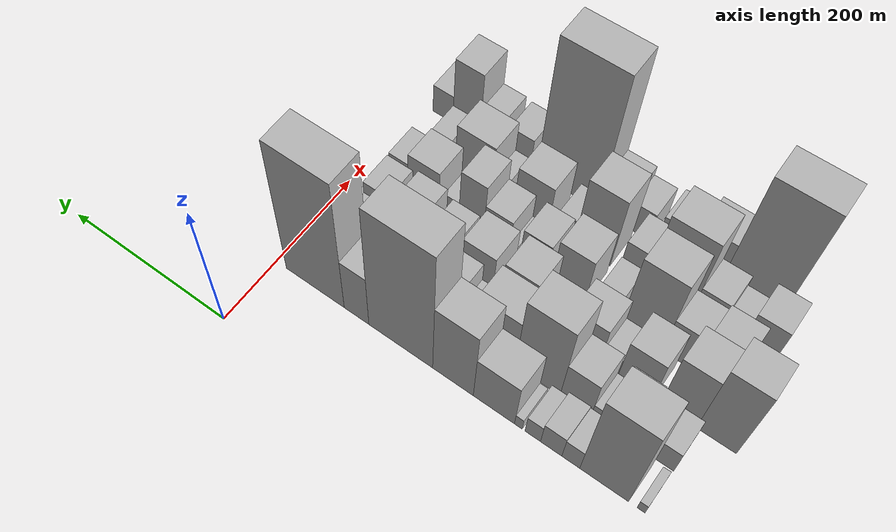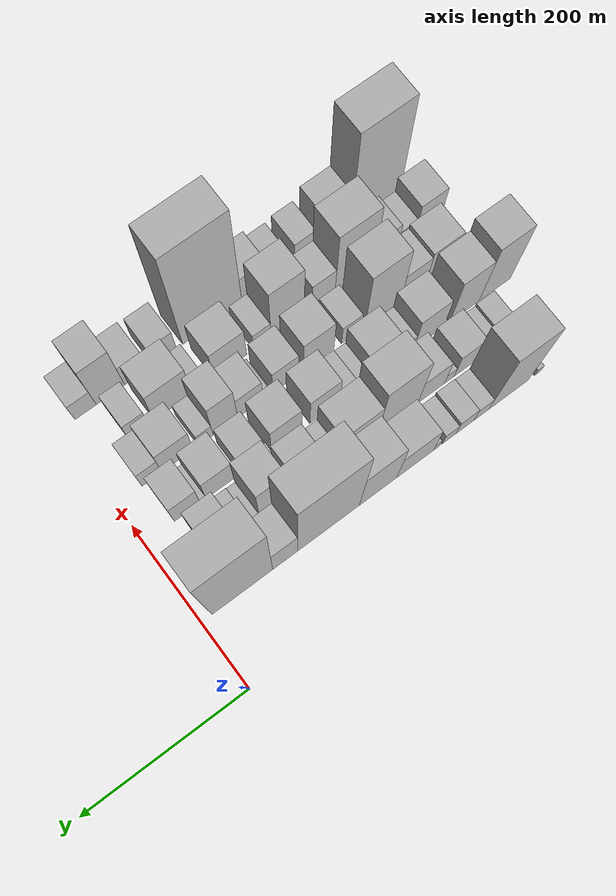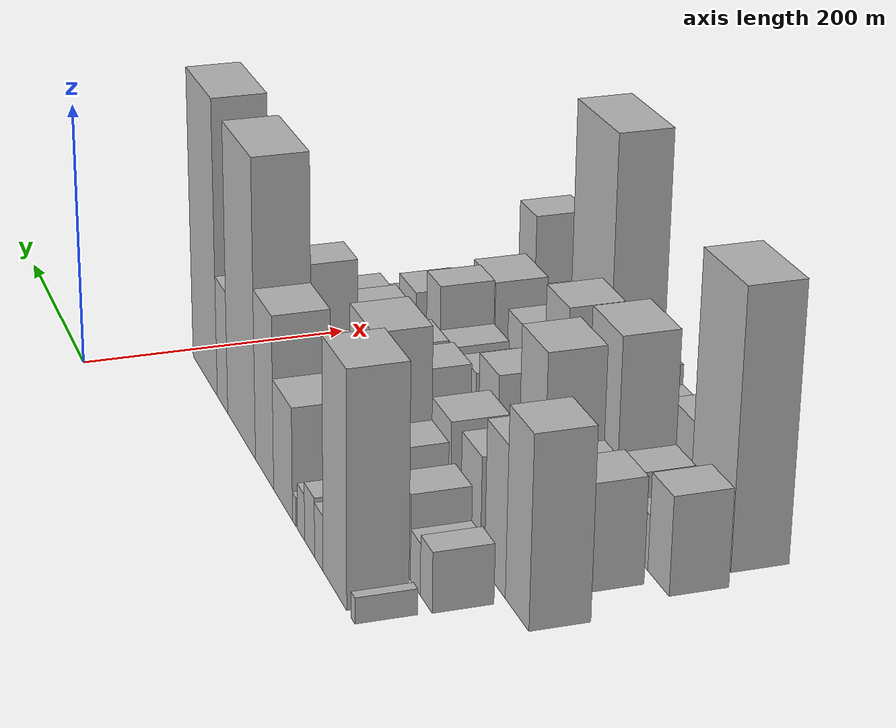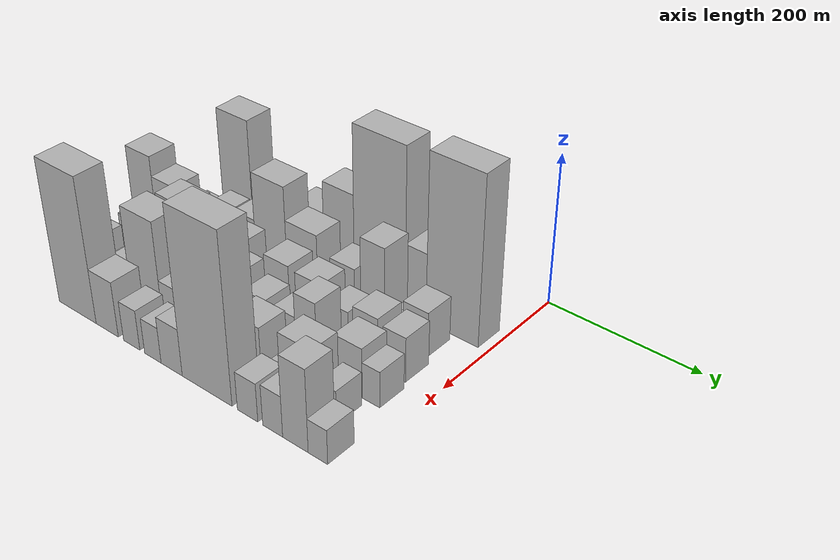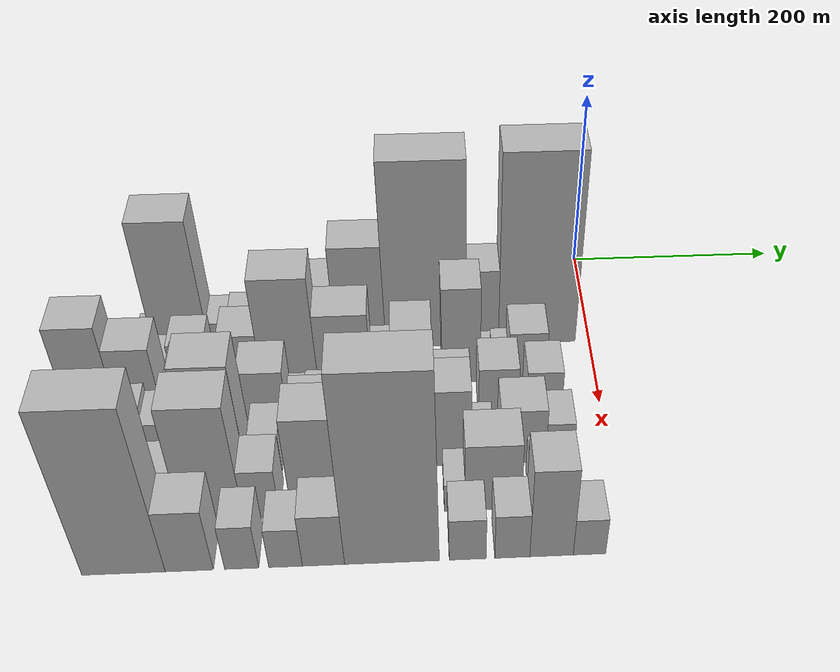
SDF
<sdf version="1.6">
 <world name="default">
  <model name="building_9">
   <static>1</static>
   <pose>100.0000 -427.7670 0 0.000000 0.000000 0.000000</pose>
   <link name="link">
    <pose>0 0 9.00 0 0 0</pose>
    <collision name="collision"><geometry><box><size>40.0000 8.4473 18.0000</size></box></geometry></collision>
    <visual name="visual">
     <cast_shadows>0</cast_shadows>
     <geometry><box><size>40.0000 8.4473 18.0000</size></box></geometry>
     <material>
      <script>
       <uri>model://HANNAS_wall/materials/scripts</uri>
       <uri>model://HANNAS_wall/materials/textures</uri>
       <name>vrc/HANNAS_wall</name>
      </script>
     </material>
    </visual>
   </link>
  </model>
  <model name="building_10">
   <static>1</static>
   <pose>100.0000 -388.4443 0 0.000000 0.000000 0.000000</pose>
   <link name="link">
    <pose>0 0 81.00 0 0 0</pose>
    <collision name="collision"><geometry><box><size>40.0000 52.1980 162.0000</size></box></geometry></collision>
    <visual name="visual">
     <cast_shadows>0</cast_shadows>
     <geometry><box><size>40.0000 52.1980 162.0000</size></box></geometry>
     <material>
      <script>
       <uri>model://HANNAS_wall/materials/scripts</uri>
       <uri>model://HANNAS_wall/materials/textures</uri>
       <name>vrc/HANNAS_wall</name>
      </script>
     </material>
    </visual>
   </link>
  </model>
  <model name="building_11">
   <static>1</static>
   <pose>100.0000 -352.5850 0 0.000000 0.000000 0.000000</pose>
   <link name="link">
    <pose>0 0 19.50 0 0 0</pose>
    <collision name="collision"><geometry><box><size>40.0000 19.5205 39.0000</size></box></geometry></collision>
    <visual name="visual">
     <cast_shadows>0</cast_shadows>
     <geometry><box><size>40.0000 19.5205 39.0000</size></box></geometry>
     <material>
      <script>
       <uri>model://HANNAS_wall/materials/scripts</uri>
       <uri>model://HANNAS_wall/materials/textures</uri>
       <name>vrc/HANNAS_wall</name>
      </script>
     </material>
    </visual>
   </link>
  </model>
  <model name="building_12">
   <static>1</static>
   <pose>100.0000 -331.0604 0 0.000000 0.000000 0.000000</pose>
   <link name="link">
    <pose>0 0 21.00 0 0 0</pose>
    <collision name="collision"><geometry><box><size>40.0000 23.5287 42.0000</size></box></geometry></collision>
    <visual name="visual">
     <cast_shadows>0</cast_shadows>
     <geometry><box><size>40.0000 23.5287 42.0000</size></box></geometry>
     <material>
      <script>
       <uri>model://HANNAS_wall/materials/scripts</uri>
       <uri>model://HANNAS_wall/materials/textures</uri>
       <name>vrc/HANNAS_wall</name>
      </script>
     </material>
    </visual>
   </link>
  </model>
  <model name="building_13">
   <static>1</static>
   <pose>100.0000 -310.6042 0 0.000000 0.000000 0.000000</pose>
   <link name="link">
    <pose>0 0 16.50 0 0 0</pose>
    <collision name="collision"><geometry><box><size>40.0000 17.3837 33.0000</size></box></geometry></collision>
    <visual name="visual">
     <cast_shadows>0</cast_shadows>
     <geometry><box><size>40.0000 17.3837 33.0000</size></box></geometry>
     <material>
      <script>
       <uri>model://HANNAS_wall/materials/scripts</uri>
       <uri>model://HANNAS_wall/materials/textures</uri>
       <name>vrc/HANNAS_wall</name>
      </script>
     </material>
    </visual>
   </link>
  </model>
  <model name="building_14">
   <static>1</static>
   <pose>100.0000 -294.4897 0 0.000000 0.000000 0.000000</pose>
   <link name="link">
    <pose>0 0 10.50 0 0 0</pose>
    <collision name="collision"><geometry><box><size>40.0000 8.8454 21.0000</size></box></geometry></collision>
    <visual name="visual">
     <cast_shadows>0</cast_shadows>
     <geometry><box><size>40.0000 8.8454 21.0000</size></box></geometry>
     <material>
      <script>
       <uri>model://HANNAS_wall/materials/scripts</uri>
       <uri>model://HANNAS_wall/materials/textures</uri>
       <name>vrc/HANNAS_wall</name>
      </script>
     </material>
    </visual>
   </link>
  </model>
  <model name="building_15">
   <static>1</static>
   <pose>100.0000 -266.5161 0 0.000000 0.000000 0.000000</pose>
   <link name="link">
    <pose>0 0 40.50 0 0 0</pose>
    <collision name="collision"><geometry><box><size>40.0000 47.1018 81.0000</size></box></geometry></collision>
    <visual name="visual">
     <cast_shadows>0</cast_shadows>
     <geometry><box><size>40.0000 47.1018 81.0000</size></box></geometry>
     <material>
      <script>
       <uri>model://HANNAS_wall/materials/scripts</uri>
       <uri>model://HANNAS_wall/materials/textures</uri>
       <name>vrc/HANNAS_wall</name>
      </script>
     </material>
    </visual>
   </link>
  </model>
  <model name="building_16">
   <static>1</static>
   <pose>100.0000 -219.1321 0 0.000000 0.000000 0.000000</pose>
   <link name="link">
    <pose>0 0 63.00 0 0 0</pose>
    <collision name="collision"><geometry><box><size>40.0000 47.6662 126.0000</size></box></geometry></collision>
    <visual name="visual">
     <cast_shadows>0</cast_shadows>
     <geometry><box><size>40.0000 47.6662 126.0000</size></box></geometry>
     <material>
      <script>
       <uri>model://HANNAS_wall/materials/scripts</uri>
       <uri>model://HANNAS_wall/materials/textures</uri>
       <name>vrc/HANNAS_wall</name>
      </script>
     </material>
    </visual>
   </link>
  </model>
  <model name="building_17">
   <static>1</static>
   <pose>100.0000 -156.6568 0 0.000000 0.000000 0.000000</pose>
   <link name="link">
    <pose>0 0 109.50 0 0 0</pose>
    <collision name="collision"><geometry><box><size>40.0000 77.2843 219.0000</size></box></geometry></collision>
    <visual name="visual">
     <cast_shadows>0</cast_shadows>
     <geometry><box><size>40.0000 77.2843 219.0000</size></box></geometry>
     <material>
      <script>
       <uri>model://HANNAS_wall/materials/scripts</uri>
       <uri>model://HANNAS_wall/materials/textures</uri>
       <name>vrc/HANNAS_wall</name>
      </script>
     </material>
    </visual>
   </link>
  </model>
  <model name="building_18">
   <static>1</static>
   <pose>100.0000 -102.6822 0 0.000000 0.000000 0.000000</pose>
   <link name="link">
    <pose>0 0 46.50 0 0 0</pose>
    <collision name="collision"><geometry><box><size>40.0000 30.6650 93.0000</size></box></geometry></collision>
    <visual name="visual">
     <cast_shadows>0</cast_shadows>
     <geometry><box><size>40.0000 30.6650 93.0000</size></box></geometry>
     <material>
      <script>
       <uri>model://HANNAS_wall/materials/scripts</uri>
       <uri>model://HANNAS_wall/materials/textures</uri>
       <name>vrc/HANNAS_wall</name>
      </script>
     </material>
    </visual>
   </link>
  </model>
  <model name="building_19">
   <static>1</static>
   <pose>100.0000 -50.2767 0 0.000000 0.000000 0.000000</pose>
   <link name="link">
    <pose>0 0 112.50 0 0 0</pose>
    <collision name="collision"><geometry><box><size>40.0000 74.1460 225.0000</size></box></geometry></collision>
    <visual name="visual">
     <cast_shadows>0</cast_shadows>
     <geometry><box><size>40.0000 74.1460 225.0000</size></box></geometry>
     <material>
      <script>
       <uri>model://HANNAS_wall/materials/scripts</uri>
       <uri>model://HANNAS_wall/materials/textures</uri>
       <name>vrc/HANNAS_wall</name>
      </script>
     </material>
    </visual>
   </link>
  </model>
  <model name="building_56">
   <static>1</static>
   <pose>149.0000 -421.1905 0 0.000000 0.000000 0.000000</pose>
   <link name="link">
    <pose>0 0 21.00 0 0 0</pose>
    <collision name="collision"><geometry><box><size>40.0000 23.5551 42.0000</size></box></geometry></collision>
    <visual name="visual">
     <cast_shadows>0</cast_shadows>
     <geometry><box><size>40.0000 23.5551 42.0000</size></box></geometry>
     <material>
      <script>
       <uri>model://HANNAS_wall/materials/scripts</uri>
       <uri>model://HANNAS_wall/materials/textures</uri>
       <name>vrc/HANNAS_wall</name>
      </script>
     </material>
    </visual>
   </link>
  </model>
  <model name="building_57">
   <static>1</static>
   <pose>149.0000 -399.3703 0 0.000000 0.000000 0.000000</pose>
   <link name="link">
    <pose>0 0 18.00 0 0 0</pose>
    <collision name="collision"><geometry><box><size>40.0000 20.0854 36.0000</size></box></geometry></collision>
    <visual name="visual">
     <cast_shadows>0</cast_shadows>
     <geometry><box><size>40.0000 20.0854 36.0000</size></box></geometry>
     <material>
      <script>
       <uri>model://HANNAS_wall/materials/scripts</uri>
       <uri>model://HANNAS_wall/materials/textures</uri>
       <name>vrc/HANNAS_wall</name>
      </script>
     </material>
    </visual>
   </link>
  </model>
  <model name="building_58">
   <static>1</static>
   <pose>149.0000 -372.7530 0 0.000000 0.000000 0.000000</pose>
   <link name="link">
    <pose>0 0 30.00 0 0 0</pose>
    <collision name="collision"><geometry><box><size>40.0000 33.1493 60.0000</size></box></geometry></collision>
    <visual name="visual">
     <cast_shadows>0</cast_shadows>
     <geometry><box><size>40.0000 33.1493 60.0000</size></box></geometry>
     <material>
      <script>
       <uri>model://HANNAS_wall/materials/scripts</uri>
       <uri>model://HANNAS_wall/materials/textures</uri>
       <name>vrc/HANNAS_wall</name>
      </script>
     </material>
    </visual>
   </link>
  </model>
  <model name="building_59">
   <static>1</static>
   <pose>149.0000 -349.8286 0 0.000000 0.000000 0.000000</pose>
   <link name="link">
    <pose>0 0 13.50 0 0 0</pose>
    <collision name="collision"><geometry><box><size>40.0000 12.6994 27.0000</size></box></geometry></collision>
    <visual name="visual">
     <cast_shadows>0</cast_shadows>
     <geometry><box><size>40.0000 12.6994 27.0000</size></box></geometry>
     <material>
      <script>
       <uri>model://HANNAS_wall/materials/scripts</uri>
       <uri>model://HANNAS_wall/materials/textures</uri>
       <name>vrc/HANNAS_wall</name>
      </script>
     </material>
    </visual>
   </link>
  </model>
  <model name="building_60">
   <static>1</static>
   <pose>149.0000 -326.1392 0 0.000000 0.000000 0.000000</pose>
   <link name="link">
    <pose>0 0 34.50 0 0 0</pose>
    <collision name="collision"><geometry><box><size>40.0000 34.6795 69.0000</size></box></geometry></collision>
    <visual name="visual">
     <cast_shadows>0</cast_shadows>
     <geometry><box><size>40.0000 34.6795 69.0000</size></box></geometry>
     <material>
      <script>
       <uri>model://HANNAS_wall/materials/scripts</uri>
       <uri>model://HANNAS_wall/materials/textures</uri>
       <name>vrc/HANNAS_wall</name>
      </script>
     </material>
    </visual>
   </link>
  </model>
  <model name="building_61">
   <static>1</static>
   <pose>149.0000 -283.1372 0 0.000000 0.000000 0.000000</pose>
   <link name="link">
    <pose>0 0 67.50 0 0 0</pose>
    <collision name="collision"><geometry><box><size>40.0000 51.3245 135.0000</size></box></geometry></collision>
    <visual name="visual">
     <cast_shadows>0</cast_shadows>
     <geometry><box><size>40.0000 51.3245 135.0000</size></box></geometry>
     <material>
      <script>
       <uri>model://HANNAS_wall/materials/scripts</uri>
       <uri>model://HANNAS_wall/materials/textures</uri>
       <name>vrc/HANNAS_wall</name>
      </script>
     </material>
    </visual>
   </link>
  </model>
  <model name="building_62">
   <static>1</static>
   <pose>149.0000 -232.9985 0 0.000000 0.000000 0.000000</pose>
   <link name="link">
    <pose>0 0 45.00 0 0 0</pose>
    <collision name="collision"><geometry><box><size>40.0000 48.9528 90.0000</size></box></geometry></collision>
    <visual name="visual">
     <cast_shadows>0</cast_shadows>
     <geometry><box><size>40.0000 48.9528 90.0000</size></box></geometry>
     <material>
      <script>
       <uri>model://HANNAS_wall/materials/scripts</uri>
       <uri>model://HANNAS_wall/materials/textures</uri>
       <name>vrc/HANNAS_wall</name>
      </script>
     </material>
    </visual>
   </link>
  </model>
  <model name="building_63">
   <static>1</static>
   <pose>149.0000 -198.7136 0 0.000000 0.000000 0.000000</pose>
   <link name="link">
    <pose>0 0 19.50 0 0 0</pose>
    <collision name="collision"><geometry><box><size>40.0000 19.6170 39.0000</size></box></geometry></collision>
    <visual name="visual">
     <cast_shadows>0</cast_shadows>
     <geometry><box><size>40.0000 19.6170 39.0000</size></box></geometry>
     <material>
      <script>
       <uri>model://HANNAS_wall/materials/scripts</uri>
       <uri>model://HANNAS_wall/materials/textures</uri>
       <name>vrc/HANNAS_wall</name>
      </script>
     </material>
    </visual>
   </link>
  </model>
  <model name="building_64">
   <static>1</static>
   <pose>149.0000 -170.3806 0 0.000000 0.000000 0.000000</pose>
   <link name="link">
    <pose>0 0 34.50 0 0 0</pose>
    <collision name="collision"><geometry><box><size>40.0000 37.0490 69.0000</size></box></geometry></collision>
    <visual name="visual">
     <cast_shadows>0</cast_shadows>
     <geometry><box><size>40.0000 37.0490 69.0000</size></box></geometry>
     <material>
      <script>
       <uri>model://HANNAS_wall/materials/scripts</uri>
       <uri>model://HANNAS_wall/materials/textures</uri>
       <name>vrc/HANNAS_wall</name>
      </script>
     </material>
    </visual>
   </link>
  </model>
  <model name="building_65">
   <static>1</static>
   <pose>149.0000 -125.1274 0 0.000000 0.000000 0.000000</pose>
   <link name="link">
    <pose>0 0 58.50 0 0 0</pose>
    <collision name="collision"><geometry><box><size>40.0000 35.4574 117.0000</size></box></geometry></collision>
    <visual name="visual">
     <cast_shadows>0</cast_shadows>
     <geometry><box><size>40.0000 35.4574 117.0000</size></box></geometry>
     <material>
      <script>
       <uri>model://HANNAS_wall/materials/scripts</uri>
       <uri>model://HANNAS_wall/materials/textures</uri>
       <name>vrc/HANNAS_wall</name>
      </script>
     </material>
    </visual>
   </link>
  </model>
  <model name="building_66">
   <static>1</static>
   <pose>149.0000 -101.9078 0 0.000000 0.000000 0.000000</pose>
   <link name="link">
    <pose>0 0 13.50 0 0 0</pose>
    <collision name="collision"><geometry><box><size>40.0000 10.9818 27.0000</size></box></geometry></collision>
    <visual name="visual">
     <cast_shadows>0</cast_shadows>
     <geometry><box><size>40.0000 10.9818 27.0000</size></box></geometry>
     <material>
      <script>
       <uri>model://HANNAS_wall/materials/scripts</uri>
       <uri>model://HANNAS_wall/materials/textures</uri>
       <name>vrc/HANNAS_wall</name>
      </script>
     </material>
    </visual>
   </link>
  </model>
  <model name="building_67">
   <static>1</static>
   <pose>149.0000 -88.7672 0 0.000000 0.000000 0.000000</pose>
   <link name="link">
    <pose>0 0 15.00 0 0 0</pose>
    <collision name="collision"><geometry><box><size>40.0000 15.2995 30.0000</size></box></geometry></collision>
    <visual name="visual">
     <cast_shadows>0</cast_shadows>
     <geometry><box><size>40.0000 15.2995 30.0000</size></box></geometry>
     <material>
      <script>
       <uri>model://HANNAS_wall/materials/scripts</uri>
       <uri>model://HANNAS_wall/materials/textures</uri>
       <name>vrc/HANNAS_wall</name>
      </script>
     </material>
    </visual>
   </link>
  </model>
  <model name="building_68">
   <static>1</static>
   <pose>149.0000 -63.5517 0 0.000000 0.000000 0.000000</pose>
   <link name="link">
    <pose>0 0 30.00 0 0 0</pose>
    <collision name="collision"><geometry><box><size>40.0000 35.1316 60.0000</size></box></geometry></collision>
    <visual name="visual">
     <cast_shadows>0</cast_shadows>
     <geometry><box><size>40.0000 35.1316 60.0000</size></box></geometry>
     <material>
      <script>
       <uri>model://HANNAS_wall/materials/scripts</uri>
       <uri>model://HANNAS_wall/materials/textures</uri>
       <name>vrc/HANNAS_wall</name>
      </script>
     </material>
    </visual>
   </link>
  </model>
  <model name="building_108">
   <static>1</static>
   <pose>198.0000 -449.6464 0 0.000000 0.000000 0.000000</pose>
   <link name="link">
    <pose>0 0 66.00 0 0 0</pose>
    <collision name="collision"><geometry><box><size>40.0000 42.3879 132.0000</size></box></geometry></collision>
    <visual name="visual">
     <cast_shadows>0</cast_shadows>
     <geometry><box><size>40.0000 42.3879 132.0000</size></box></geometry>
     <material>
      <script>
       <uri>model://HANNAS_wall/materials/scripts</uri>
       <uri>model://HANNAS_wall/materials/textures</uri>
       <name>vrc/HANNAS_wall</name>
      </script>
     </material>
    </visual>
   </link>
  </model>
  <model name="building_109">
   <static>1</static>
   <pose>198.0000 -408.9174 0 0.000000 0.000000 0.000000</pose>
   <link name="link">
    <pose>0 0 52.50 0 0 0</pose>
    <collision name="collision"><geometry><box><size>40.0000 39.0702 105.0000</size></box></geometry></collision>
    <visual name="visual">
     <cast_shadows>0</cast_shadows>
     <geometry><box><size>40.0000 39.0702 105.0000</size></box></geometry>
     <material>
      <script>
       <uri>model://HANNAS_wall/materials/scripts</uri>
       <uri>model://HANNAS_wall/materials/textures</uri>
       <name>vrc/HANNAS_wall</name>
      </script>
     </material>
    </visual>
   </link>
  </model>
  <model name="building_110">
   <static>1</static>
   <pose>198.0000 -361.9362 0 0.000000 0.000000 0.000000</pose>
   <link name="link">
    <pose>0 0 37.50 0 0 0</pose>
    <collision name="collision"><geometry><box><size>40.0000 38.8923 75.0000</size></box></geometry></collision>
    <visual name="visual">
     <cast_shadows>0</cast_shadows>
     <geometry><box><size>40.0000 38.8923 75.0000</size></box></geometry>
     <material>
      <script>
       <uri>model://HANNAS_wall/materials/scripts</uri>
       <uri>model://HANNAS_wall/materials/textures</uri>
       <name>vrc/HANNAS_wall</name>
      </script>
     </material>
    </visual>
   </link>
  </model>
  <model name="building_111">
   <static>1</static>
   <pose>198.0000 -332.0083 0 0.000000 0.000000 0.000000</pose>
   <link name="link">
    <pose>0 0 18.00 0 0 0</pose>
    <collision name="collision"><geometry><box><size>40.0000 20.9636 36.0000</size></box></geometry></collision>
    <visual name="visual">
     <cast_shadows>0</cast_shadows>
     <geometry><box><size>40.0000 20.9636 36.0000</size></box></geometry>
     <material>
      <script>
       <uri>model://HANNAS_wall/materials/scripts</uri>
       <uri>model://HANNAS_wall/materials/textures</uri>
       <name>vrc/HANNAS_wall</name>
      </script>
     </material>
    </visual>
   </link>
  </model>
  <model name="building_112">
   <static>1</static>
   <pose>198.0000 -301.5677 0 0.000000 0.000000 0.000000</pose>
   <link name="link">
    <pose>0 0 36.00 0 0 0</pose>
    <collision name="collision"><geometry><box><size>40.0000 39.9176 72.0000</size></box></geometry></collision>
    <visual name="visual">
     <cast_shadows>0</cast_shadows>
     <geometry><box><size>40.0000 39.9176 72.0000</size></box></geometry>
     <material>
      <script>
       <uri>model://HANNAS_wall/materials/scripts</uri>
       <uri>model://HANNAS_wall/materials/textures</uri>
       <name>vrc/HANNAS_wall</name>
      </script>
     </material>
    </visual>
   </link>
  </model>
  <model name="building_113">
   <static>1</static>
   <pose>198.0000 -274.0998 0 0.000000 0.000000 0.000000</pose>
   <link name="link">
    <pose>0 0 15.00 0 0 0</pose>
    <collision name="collision"><geometry><box><size>40.0000 15.0181 30.0000</size></box></geometry></collision>
    <visual name="visual">
     <cast_shadows>0</cast_shadows>
     <geometry><box><size>40.0000 15.0181 30.0000</size></box></geometry>
     <material>
      <script>
       <uri>model://HANNAS_wall/materials/scripts</uri>
       <uri>model://HANNAS_wall/materials/textures</uri>
       <name>vrc/HANNAS_wall</name>
      </script>
     </material>
    </visual>
   </link>
  </model>
  <model name="building_114">
   <static>1</static>
   <pose>198.0000 -257.3623 0 0.000000 0.000000 0.000000</pose>
   <link name="link">
    <pose>0 0 16.50 0 0 0</pose>
    <collision name="collision"><geometry><box><size>40.0000 18.4568 33.0000</size></box></geometry></collision>
    <visual name="visual">
     <cast_shadows>0</cast_shadows>
     <geometry><box><size>40.0000 18.4568 33.0000</size></box></geometry>
     <material>
      <script>
       <uri>model://HANNAS_wall/materials/scripts</uri>
       <uri>model://HANNAS_wall/materials/textures</uri>
       <name>vrc/HANNAS_wall</name>
      </script>
     </material>
    </visual>
   </link>
  </model>
  <model name="building_115">
   <static>1</static>
   <pose>198.0000 -225.9661 0 0.000000 0.000000 0.000000</pose>
   <link name="link">
    <pose>0 0 37.50 0 0 0</pose>
    <collision name="collision"><geometry><box><size>40.0000 38.3356 75.0000</size></box></geometry></collision>
    <visual name="visual">
     <cast_shadows>0</cast_shadows>
     <geometry><box><size>40.0000 38.3356 75.0000</size></box></geometry>
     <material>
      <script>
       <uri>model://HANNAS_wall/materials/scripts</uri>
       <uri>model://HANNAS_wall/materials/textures</uri>
       <name>vrc/HANNAS_wall</name>
      </script>
     </material>
    </visual>
   </link>
  </model>
  <model name="building_116">
   <static>1</static>
   <pose>198.0000 -177.3734 0 0.000000 0.000000 0.000000</pose>
   <link name="link">
    <pose>0 0 36.00 0 0 0</pose>
    <collision name="collision"><geometry><box><size>40.0000 38.8499 72.0000</size></box></geometry></collision>
    <visual name="visual">
     <cast_shadows>0</cast_shadows>
     <geometry><box><size>40.0000 38.8499 72.0000</size></box></geometry>
     <material>
      <script>
       <uri>model://HANNAS_wall/materials/scripts</uri>
       <uri>model://HANNAS_wall/materials/textures</uri>
       <name>vrc/HANNAS_wall</name>
      </script>
     </material>
    </visual>
   </link>
  </model>
  <model name="building_117">
   <static>1</static>
   <pose>198.0000 -134.8131 0 0.000000 0.000000 0.000000</pose>
   <link name="link">
    <pose>0 0 27.00 0 0 0</pose>
    <collision name="collision"><geometry><box><size>40.0000 32.2707 54.0000</size></box></geometry></collision>
    <visual name="visual">
     <cast_shadows>0</cast_shadows>
     <geometry><box><size>40.0000 32.2707 54.0000</size></box></geometry>
     <material>
      <script>
       <uri>model://HANNAS_wall/materials/scripts</uri>
       <uri>model://HANNAS_wall/materials/textures</uri>
       <name>vrc/HANNAS_wall</name>
      </script>
     </material>
    </visual>
   </link>
  </model>
  <model name="building_118">
   <static>1</static>
   <pose>198.0000 -93.8465 0 0.000000 0.000000 0.000000</pose>
   <link name="link">
    <pose>0 0 33.00 0 0 0</pose>
    <collision name="collision"><geometry><box><size>40.0000 35.6626 66.0000</size></box></geometry></collision>
    <visual name="visual">
     <cast_shadows>0</cast_shadows>
     <geometry><box><size>40.0000 35.6626 66.0000</size></box></geometry>
     <material>
      <script>
       <uri>model://HANNAS_wall/materials/scripts</uri>
       <uri>model://HANNAS_wall/materials/textures</uri>
       <name>vrc/HANNAS_wall</name>
      </script>
     </material>
    </visual>
   </link>
  </model>
  <model name="building_119">
   <static>1</static>
   <pose>198.0000 -72.4937 0 0.000000 0.000000 0.000000</pose>
   <link name="link">
    <pose>0 0 7.50 0 0 0</pose>
    <collision name="collision"><geometry><box><size>40.0000 7.0430 15.0000</size></box></geometry></collision>
    <visual name="visual">
     <cast_shadows>0</cast_shadows>
     <geometry><box><size>40.0000 7.0430 15.0000</size></box></geometry>
     <material>
      <script>
       <uri>model://HANNAS_wall/materials/scripts</uri>
       <uri>model://HANNAS_wall/materials/textures</uri>
       <name>vrc/HANNAS_wall</name>
      </script>
     </material>
    </visual>
   </link>
  </model>
  <model name="building_120">
   <static>1</static>
   <pose>198.0000 -53.0668 0 0.000000 0.000000 0.000000</pose>
   <link name="link">
    <pose>0 0 30.00 0 0 0</pose>
    <collision name="collision"><geometry><box><size>40.0000 31.8107 60.0000</size></box></geometry></collision>
    <visual name="visual">
     <cast_shadows>0</cast_shadows>
     <geometry><box><size>40.0000 31.8107 60.0000</size></box></geometry>
     <material>
      <script>
       <uri>model://HANNAS_wall/materials/scripts</uri>
       <uri>model://HANNAS_wall/materials/textures</uri>
       <name>vrc/HANNAS_wall</name>
      </script>
     </material>
    </visual>
   </link>
  </model>
  <model name="building_153">
   <static>1</static>
   <pose>247.0000 -416.2827 0 0.000000 0.000000 0.000000</pose>
   <link name="link">
    <pose>0 0 37.50 0 0 0</pose>
    <collision name="collision"><geometry><box><size>40.0000 39.3987 75.0000</size></box></geometry></collision>
    <visual name="visual">
     <cast_shadows>0</cast_shadows>
     <geometry><box><size>40.0000 39.3987 75.0000</size></box></geometry>
     <material>
      <script>
       <uri>model://HANNAS_wall/materials/scripts</uri>
       <uri>model://HANNAS_wall/materials/textures</uri>
       <name>vrc/HANNAS_wall</name>
      </script>
     </material>
    </visual>
   </link>
  </model>
  <model name="building_154">
   <static>1</static>
   <pose>247.0000 -379.7802 0 0.000000 0.000000 0.000000</pose>
   <link name="link">
    <pose>0 0 33.00 0 0 0</pose>
    <collision name="collision"><geometry><box><size>40.0000 33.6064 66.0000</size></box></geometry></collision>
    <visual name="visual">
     <cast_shadows>0</cast_shadows>
     <geometry><box><size>40.0000 33.6064 66.0000</size></box></geometry>
     <material>
      <script>
       <uri>model://HANNAS_wall/materials/scripts</uri>
       <uri>model://HANNAS_wall/materials/textures</uri>
       <name>vrc/HANNAS_wall</name>
      </script>
     </material>
    </visual>
   </link>
  </model>
  <model name="building_155">
   <static>1</static>
   <pose>247.0000 -339.1544 0 0.000000 0.000000 0.000000</pose>
   <link name="link">
    <pose>0 0 66.00 0 0 0</pose>
    <collision name="collision"><geometry><box><size>40.0000 47.6451 132.0000</size></box></geometry></collision>
    <visual name="visual">
     <cast_shadows>0</cast_shadows>
     <geometry><box><size>40.0000 47.6451 132.0000</size></box></geometry>
     <material>
      <script>
       <uri>model://HANNAS_wall/materials/scripts</uri>
       <uri>model://HANNAS_wall/materials/textures</uri>
       <name>vrc/HANNAS_wall</name>
      </script>
     </material>
    </visual>
   </link>
  </model>
  <model name="building_156">
   <static>1</static>
   <pose>247.0000 -297.4742 0 0.000000 0.000000 0.000000</pose>
   <link name="link">
    <pose>0 0 22.50 0 0 0</pose>
    <collision name="collision"><geometry><box><size>40.0000 25.7153 45.0000</size></box></geometry></collision>
    <visual name="visual">
     <cast_shadows>0</cast_shadows>
     <geometry><box><size>40.0000 25.7153 45.0000</size></box></geometry>
     <material>
      <script>
       <uri>model://HANNAS_wall/materials/scripts</uri>
       <uri>model://HANNAS_wall/materials/textures</uri>
       <name>vrc/HANNAS_wall</name>
      </script>
     </material>
    </visual>
   </link>
  </model>
  <model name="building_157">
   <static>1</static>
   <pose>247.0000 -255.0066 0 0.000000 0.000000 0.000000</pose>
   <link name="link">
    <pose>0 0 39.00 0 0 0</pose>
    <collision name="collision"><geometry><box><size>40.0000 39.2197 78.0000</size></box></geometry></collision>
    <visual name="visual">
     <cast_shadows>0</cast_shadows>
     <geometry><box><size>40.0000 39.2197 78.0000</size></box></geometry>
     <material>
      <script>
       <uri>model://HANNAS_wall/materials/scripts</uri>
       <uri>model://HANNAS_wall/materials/textures</uri>
       <name>vrc/HANNAS_wall</name>
      </script>
     </material>
    </visual>
   </link>
  </model>
  <model name="building_158">
   <static>1</static>
   <pose>247.0000 -212.8145 0 0.000000 0.000000 0.000000</pose>
   <link name="link">
    <pose>0 0 30.00 0 0 0</pose>
    <collision name="collision"><geometry><box><size>40.0000 33.1645 60.0000</size></box></geometry></collision>
    <visual name="visual">
     <cast_shadows>0</cast_shadows>
     <geometry><box><size>40.0000 33.1645 60.0000</size></box></geometry>
     <material>
      <script>
       <uri>model://HANNAS_wall/materials/scripts</uri>
       <uri>model://HANNAS_wall/materials/textures</uri>
       <name>vrc/HANNAS_wall</name>
      </script>
     </material>
    </visual>
   </link>
  </model>
  <model name="building_159">
   <static>1</static>
   <pose>247.0000 -187.9735 0 0.000000 0.000000 0.000000</pose>
   <link name="link">
    <pose>0 0 10.50 0 0 0</pose>
    <collision name="collision"><geometry><box><size>40.0000 8.5174 21.0000</size></box></geometry></collision>
    <visual name="visual">
     <cast_shadows>0</cast_shadows>
     <geometry><box><size>40.0000 8.5174 21.0000</size></box></geometry>
     <material>
      <script>
       <uri>model://HANNAS_wall/materials/scripts</uri>
       <uri>model://HANNAS_wall/materials/textures</uri>
       <name>vrc/HANNAS_wall</name>
      </script>
     </material>
    </visual>
   </link>
  </model>
  <model name="building_160">
   <static>1</static>
   <pose>247.0000 -167.5328 0 0.000000 0.000000 0.000000</pose>
   <link name="link">
    <pose>0 0 30.00 0 0 0</pose>
    <collision name="collision"><geometry><box><size>40.0000 32.3640 60.0000</size></box></geometry></collision>
    <visual name="visual">
     <cast_shadows>0</cast_shadows>
     <geometry><box><size>40.0000 32.3640 60.0000</size></box></geometry>
     <material>
      <script>
       <uri>model://HANNAS_wall/materials/scripts</uri>
       <uri>model://HANNAS_wall/materials/textures</uri>
       <name>vrc/HANNAS_wall</name>
      </script>
     </material>
    </visual>
   </link>
  </model>
  <model name="building_161">
   <static>1</static>
   <pose>247.0000 -135.9213 0 0.000000 0.000000 0.000000</pose>
   <link name="link">
    <pose>0 0 46.50 0 0 0</pose>
    <collision name="collision"><geometry><box><size>40.0000 30.8590 93.0000</size></box></geometry></collision>
    <visual name="visual">
     <cast_shadows>0</cast_shadows>
     <geometry><box><size>40.0000 30.8590 93.0000</size></box></geometry>
     <material>
      <script>
       <uri>model://HANNAS_wall/materials/scripts</uri>
       <uri>model://HANNAS_wall/materials/textures</uri>
       <name>vrc/HANNAS_wall</name>
      </script>
     </material>
    </visual>
   </link>
  </model>
  <model name="building_162">
   <static>1</static>
   <pose>247.0000 -111.0636 0 0.000000 0.000000 0.000000</pose>
   <link name="link">
    <pose>0 0 18.00 0 0 0</pose>
    <collision name="collision"><geometry><box><size>40.0000 18.8565 36.0000</size></box></geometry></collision>
    <visual name="visual">
     <cast_shadows>0</cast_shadows>
     <geometry><box><size>40.0000 18.8565 36.0000</size></box></geometry>
     <material>
      <script>
       <uri>model://HANNAS_wall/materials/scripts</uri>
       <uri>model://HANNAS_wall/materials/textures</uri>
       <name>vrc/HANNAS_wall</name>
      </script>
     </material>
    </visual>
   </link>
  </model>
  <model name="building_163">
   <static>1</static>
   <pose>247.0000 -75.8378 0 0.000000 0.000000 0.000000</pose>
   <link name="link">
    <pose>0 0 33.00 0 0 0</pose>
    <collision name="collision"><geometry><box><size>40.0000 39.5952 66.0000</size></box></geometry></collision>
    <visual name="visual">
     <cast_shadows>0</cast_shadows>
     <geometry><box><size>40.0000 39.5952 66.0000</size></box></geometry>
     <material>
      <script>
       <uri>model://HANNAS_wall/materials/scripts</uri>
       <uri>model://HANNAS_wall/materials/textures</uri>
       <name>vrc/HANNAS_wall</name>
      </script>
     </material>
    </visual>
   </link>
  </model>
  <model name="building_164">
   <static>1</static>
   <pose>247.0000 -43.8444 0 0.000000 0.000000 0.000000</pose>
   <link name="link">
    <pose>0 0 24.00 0 0 0</pose>
    <collision name="collision"><geometry><box><size>40.0000 24.3916 48.0000</size></box></geometry></collision>
    <visual name="visual">
     <cast_shadows>0</cast_shadows>
     <geometry><box><size>40.0000 24.3916 48.0000</size></box></geometry>
     <material>
      <script>
       <uri>model://HANNAS_wall/materials/scripts</uri>
       <uri>model://HANNAS_wall/materials/textures</uri>
       <name>vrc/HANNAS_wall</name>
      </script>
     </material>
    </visual>
   </link>
  </model>
  <model name="building_202">
   <static>1</static>
   <pose>296.0000 -437.6895 0 0.000000 0.000000 0.000000</pose>
   <link name="link">
    <pose>0 0 34.50 0 0 0</pose>
    <collision name="collision"><geometry><box><size>40.0000 34.5657 69.0000</size></box></geometry></collision>
    <visual name="visual">
     <cast_shadows>0</cast_shadows>
     <geometry><box><size>40.0000 34.5657 69.0000</size></box></geometry>
     <material>
      <script>
       <uri>model://HANNAS_wall/materials/scripts</uri>
       <uri>model://HANNAS_wall/materials/textures</uri>
       <name>vrc/HANNAS_wall</name>
      </script>
     </material>
    </visual>
   </link>
  </model>
  <model name="building_203">
   <static>1</static>
   <pose>296.0000 -408.7557 0 0.000000 0.000000 0.000000</pose>
   <link name="link">
    <pose>0 0 19.50 0 0 0</pose>
    <collision name="collision"><geometry><box><size>40.0000 23.3019 39.0000</size></box></geometry></collision>
    <visual name="visual">
     <cast_shadows>0</cast_shadows>
     <geometry><box><size>40.0000 23.3019 39.0000</size></box></geometry>
     <material>
      <script>
       <uri>model://HANNAS_wall/materials/scripts</uri>
       <uri>model://HANNAS_wall/materials/textures</uri>
       <name>vrc/HANNAS_wall</name>
      </script>
     </material>
    </visual>
   </link>
  </model>
  <model name="building_204">
   <static>1</static>
   <pose>296.0000 -381.1499 0 0.000000 0.000000 0.000000</pose>
   <link name="link">
    <pose>0 0 28.50 0 0 0</pose>
    <collision name="collision"><geometry><box><size>40.0000 31.9096 57.0000</size></box></geometry></collision>
    <visual name="visual">
     <cast_shadows>0</cast_shadows>
     <geometry><box><size>40.0000 31.9096 57.0000</size></box></geometry>
     <material>
      <script>
       <uri>model://HANNAS_wall/materials/scripts</uri>
       <uri>model://HANNAS_wall/materials/textures</uri>
       <name>vrc/HANNAS_wall</name>
      </script>
     </material>
    </visual>
   </link>
  </model>
  <model name="building_205">
   <static>1</static>
   <pose>296.0000 -339.2434 0 0.000000 0.000000 0.000000</pose>
   <link name="link">
    <pose>0 0 69.00 0 0 0</pose>
    <collision name="collision"><geometry><box><size>40.0000 51.9035 138.0000</size></box></geometry></collision>
    <visual name="visual">
     <cast_shadows>0</cast_shadows>
     <geometry><box><size>40.0000 51.9035 138.0000</size></box></geometry>
     <material>
      <script>
       <uri>model://HANNAS_wall/materials/scripts</uri>
       <uri>model://HANNAS_wall/materials/textures</uri>
       <name>vrc/HANNAS_wall</name>
      </script>
     </material>
    </visual>
   </link>
  </model>
  <model name="building_206">
   <static>1</static>
   <pose>296.0000 -298.1695 0 0.000000 0.000000 0.000000</pose>
   <link name="link">
    <pose>0 0 30.00 0 0 0</pose>
    <collision name="collision"><geometry><box><size>40.0000 30.2442 60.0000</size></box></geometry></collision>
    <visual name="visual">
     <cast_shadows>0</cast_shadows>
     <geometry><box><size>40.0000 30.2442 60.0000</size></box></geometry>
     <material>
      <script>
       <uri>model://HANNAS_wall/materials/scripts</uri>
       <uri>model://HANNAS_wall/materials/textures</uri>
       <name>vrc/HANNAS_wall</name>
      </script>
     </material>
    </visual>
   </link>
  </model>
  <model name="building_207">
   <static>1</static>
   <pose>296.0000 -251.5535 0 0.000000 0.000000 0.000000</pose>
   <link name="link">
    <pose>0 0 60.00 0 0 0</pose>
    <collision name="collision"><geometry><box><size>40.0000 42.9878 120.0000</size></box></geometry></collision>
    <visual name="visual">
     <cast_shadows>0</cast_shadows>
     <geometry><box><size>40.0000 42.9878 120.0000</size></box></geometry>
     <material>
      <script>
       <uri>model://HANNAS_wall/materials/scripts</uri>
       <uri>model://HANNAS_wall/materials/textures</uri>
       <name>vrc/HANNAS_wall</name>
      </script>
     </material>
    </visual>
   </link>
  </model>
  <model name="building_208">
   <static>1</static>
   <pose>296.0000 -218.7961 0 0.000000 0.000000 0.000000</pose>
   <link name="link">
    <pose>0 0 21.00 0 0 0</pose>
    <collision name="collision"><geometry><box><size>40.0000 22.5271 42.0000</size></box></geometry></collision>
    <visual name="visual">
     <cast_shadows>0</cast_shadows>
     <geometry><box><size>40.0000 22.5271 42.0000</size></box></geometry>
     <material>
      <script>
       <uri>model://HANNAS_wall/materials/scripts</uri>
       <uri>model://HANNAS_wall/materials/textures</uri>
       <name>vrc/HANNAS_wall</name>
      </script>
     </material>
    </visual>
   </link>
  </model>
  <model name="building_209">
   <static>1</static>
   <pose>296.0000 -177.3024 0 0.000000 0.000000 0.000000</pose>
   <link name="link">
    <pose>0 0 36.00 0 0 0</pose>
    <collision name="collision"><geometry><box><size>40.0000 42.4602 72.0000</size></box></geometry></collision>
    <visual name="visual">
     <cast_shadows>0</cast_shadows>
     <geometry><box><size>40.0000 42.4602 72.0000</size></box></geometry>
     <material>
      <script>
       <uri>model://HANNAS_wall/materials/scripts</uri>
       <uri>model://HANNAS_wall/materials/textures</uri>
       <name>vrc/HANNAS_wall</name>
      </script>
     </material>
    </visual>
   </link>
  </model>
  <model name="building_210">
   <static>1</static>
   <pose>296.0000 -137.2329 0 0.000000 0.000000 0.000000</pose>
   <link name="link">
    <pose>0 0 16.50 0 0 0</pose>
    <collision name="collision"><geometry><box><size>40.0000 17.6788 33.0000</size></box></geometry></collision>
    <visual name="visual">
     <cast_shadows>0</cast_shadows>
     <geometry><box><size>40.0000 17.6788 33.0000</size></box></geometry>
     <material>
      <script>
       <uri>model://HANNAS_wall/materials/scripts</uri>
       <uri>model://HANNAS_wall/materials/textures</uri>
       <name>vrc/HANNAS_wall</name>
      </script>
     </material>
    </visual>
   </link>
  </model>
  <model name="building_211">
   <static>1</static>
   <pose>296.0000 -104.7589 0 0.000000 0.000000 0.000000</pose>
   <link name="link">
    <pose>0 0 40.50 0 0 0</pose>
    <collision name="collision"><geometry><box><size>40.0000 47.2693 81.0000</size></box></geometry></collision>
    <visual name="visual">
     <cast_shadows>0</cast_shadows>
     <geometry><box><size>40.0000 47.2693 81.0000</size></box></geometry>
     <material>
      <script>
       <uri>model://HANNAS_wall/materials/scripts</uri>
       <uri>model://HANNAS_wall/materials/textures</uri>
       <name>vrc/HANNAS_wall</name>
      </script>
     </material>
    </visual>
   </link>
  </model>
  <model name="building_212">
   <static>1</static>
   <pose>296.0000 -61.4212 0 0.000000 0.000000 0.000000</pose>
   <link name="link">
    <pose>0 0 22.50 0 0 0</pose>
    <collision name="collision"><geometry><box><size>40.0000 25.4060 45.0000</size></box></geometry></collision>
    <visual name="visual">
     <cast_shadows>0</cast_shadows>
     <geometry><box><size>40.0000 25.4060 45.0000</size></box></geometry>
     <material>
      <script>
       <uri>model://HANNAS_wall/materials/scripts</uri>
       <uri>model://HANNAS_wall/materials/textures</uri>
       <name>vrc/HANNAS_wall</name>
      </script>
     </material>
    </visual>
   </link>
  </model>
  <model name="building_247">
   <static>1</static>
   <pose>345.0000 -404.6810 0 0.000000 0.000000 0.000000</pose>
   <link name="link">
    <pose>0 0 97.50 0 0 0</pose>
    <collision name="collision"><geometry><box><size>40.0000 66.1831 195.0000</size></box></geometry></collision>
    <visual name="visual">
     <cast_shadows>0</cast_shadows>
     <geometry><box><size>40.0000 66.1831 195.0000</size></box></geometry>
     <material>
      <script>
       <uri>model://HANNAS_wall/materials/scripts</uri>
       <uri>model://HANNAS_wall/materials/textures</uri>
       <name>vrc/HANNAS_wall</name>
      </script>
     </material>
    </visual>
   </link>
  </model>
  <model name="building_248">
   <static>1</static>
   <pose>345.0000 -352.4309 0 0.000000 0.000000 0.000000</pose>
   <link name="link">
    <pose>0 0 37.50 0 0 0</pose>
    <collision name="collision"><geometry><box><size>40.0000 38.3172 75.0000</size></box></geometry></collision>
    <visual name="visual">
     <cast_shadows>0</cast_shadows>
     <geometry><box><size>40.0000 38.3172 75.0000</size></box></geometry>
     <material>
      <script>
       <uri>model://HANNAS_wall/materials/scripts</uri>
       <uri>model://HANNAS_wall/materials/textures</uri>
       <name>vrc/HANNAS_wall</name>
      </script>
     </material>
    </visual>
   </link>
  </model>
  <model name="building_249">
   <static>1</static>
   <pose>345.0000 -310.6308 0 0.000000 0.000000 0.000000</pose>
   <link name="link">
    <pose>0 0 27.00 0 0 0</pose>
    <collision name="collision"><geometry><box><size>40.0000 27.2829 54.0000</size></box></geometry></collision>
    <visual name="visual">
     <cast_shadows>0</cast_shadows>
     <geometry><box><size>40.0000 27.2829 54.0000</size></box></geometry>
     <material>
      <script>
       <uri>model://HANNAS_wall/materials/scripts</uri>
       <uri>model://HANNAS_wall/materials/textures</uri>
       <name>vrc/HANNAS_wall</name>
      </script>
     </material>
    </visual>
   </link>
  </model>
  <model name="building_250">
   <static>1</static>
   <pose>345.0000 -275.5134 0 0.000000 0.000000 0.000000</pose>
   <link name="link">
    <pose>0 0 24.00 0 0 0</pose>
    <collision name="collision"><geometry><box><size>40.0000 26.9518 48.0000</size></box></geometry></collision>
    <visual name="visual">
     <cast_shadows>0</cast_shadows>
     <geometry><box><size>40.0000 26.9518 48.0000</size></box></geometry>
     <material>
      <script>
       <uri>model://HANNAS_wall/materials/scripts</uri>
       <uri>model://HANNAS_wall/materials/textures</uri>
       <name>vrc/HANNAS_wall</name>
      </script>
     </material>
    </visual>
   </link>
  </model>
  <model name="building_251">
   <static>1</static>
   <pose>345.0000 -245.1053 0 0.000000 0.000000 0.000000</pose>
   <link name="link">
    <pose>0 0 31.50 0 0 0</pose>
    <collision name="collision"><geometry><box><size>40.0000 33.8645 63.0000</size></box></geometry></collision>
    <visual name="visual">
     <cast_shadows>0</cast_shadows>
     <geometry><box><size>40.0000 33.8645 63.0000</size></box></geometry>
     <material>
      <script>
       <uri>model://HANNAS_wall/materials/scripts</uri>
       <uri>model://HANNAS_wall/materials/textures</uri>
       <name>vrc/HANNAS_wall</name>
      </script>
     </material>
    </visual>
   </link>
  </model>
  <model name="building_252">
   <static>1</static>
   <pose>345.0000 -189.9822 0 0.000000 0.000000 0.000000</pose>
   <link name="link">
    <pose>0 0 111.00 0 0 0</pose>
    <collision name="collision"><geometry><box><size>40.0000 76.3817 222.0000</size></box></geometry></collision>
    <visual name="visual">
     <cast_shadows>0</cast_shadows>
     <geometry><box><size>40.0000 76.3817 222.0000</size></box></geometry>
     <material>
      <script>
       <uri>model://HANNAS_wall/materials/scripts</uri>
       <uri>model://HANNAS_wall/materials/textures</uri>
       <name>vrc/HANNAS_wall</name>
      </script>
     </material>
    </visual>
   </link>
  </model>
  <model name="building_253">
   <static>1</static>
   <pose>345.0000 -128.8154 0 0.000000 0.000000 0.000000</pose>
   <link name="link">
    <pose>0 0 25.50 0 0 0</pose>
    <collision name="collision"><geometry><box><size>40.0000 29.9518 51.0000</size></box></geometry></collision>
    <visual name="visual">
     <cast_shadows>0</cast_shadows>
     <geometry><box><size>40.0000 29.9518 51.0000</size></box></geometry>
     <material>
      <script>
       <uri>model://HANNAS_wall/materials/scripts</uri>
       <uri>model://HANNAS_wall/materials/textures</uri>
       <name>vrc/HANNAS_wall</name>
      </script>
     </material>
    </visual>
   </link>
  </model>
  <model name="building_254">
   <static>1</static>
   <pose>345.0000 -92.6307 0 0.000000 0.000000 0.000000</pose>
   <link name="link">
    <pose>0 0 27.00 0 0 0</pose>
    <collision name="collision"><geometry><box><size>40.0000 28.4176 54.0000</size></box></geometry></collision>
    <visual name="visual">
     <cast_shadows>0</cast_shadows>
     <geometry><box><size>40.0000 28.4176 54.0000</size></box></geometry>
     <material>
      <script>
       <uri>model://HANNAS_wall/materials/scripts</uri>
       <uri>model://HANNAS_wall/materials/textures</uri>
       <name>vrc/HANNAS_wall</name>
      </script>
     </material>
    </visual>
   </link>
  </model>
  <model name="building_255">
   <static>1</static>
   <pose>345.0000 -60.7412 0 0.000000 0.000000 0.000000</pose>
   <link name="link">
    <pose>0 0 54.00 0 0 0</pose>
    <collision name="collision"><geometry><box><size>40.0000 35.3615 108.0000</size></box></geometry></collision>
    <visual name="visual">
     <cast_shadows>0</cast_shadows>
     <geometry><box><size>40.0000 35.3615 108.0000</size></box></geometry>
     <material>
      <script>
       <uri>model://HANNAS_wall/materials/scripts</uri>
       <uri>model://HANNAS_wall/materials/textures</uri>
       <name>vrc/HANNAS_wall</name>
      </script>
     </material>
    </visual>
   </link>
  </model>
  <model name="building_256">
   <static>1</static>
   <pose>345.0000 -29.8435 0 0.000000 0.000000 0.000000</pose>
   <link name="link">
    <pose>0 0 22.50 0 0 0</pose>
    <collision name="collision"><geometry><box><size>40.0000 26.4338 45.0000</size></box></geometry></collision>
    <visual name="visual">
     <cast_shadows>0</cast_shadows>
     <geometry><box><size>40.0000 26.4338 45.0000</size></box></geometry>
     <material>
      <script>
       <uri>model://HANNAS_wall/materials/scripts</uri>
       <uri>model://HANNAS_wall/materials/textures</uri>
       <name>vrc/HANNAS_wall</name>
      </script>
     </material>
    </visual>
   </link>
  </model>
 </world>
</sdf>
